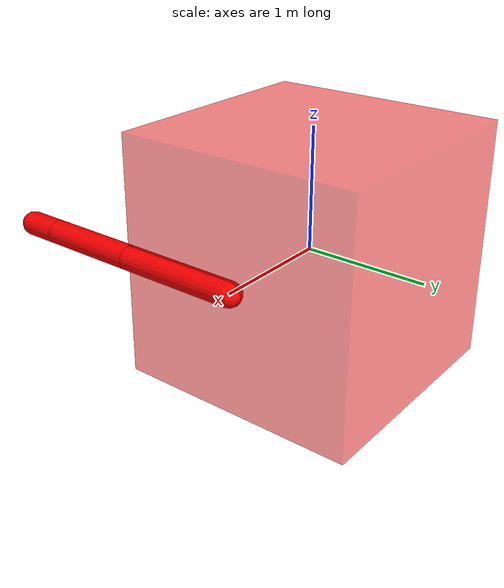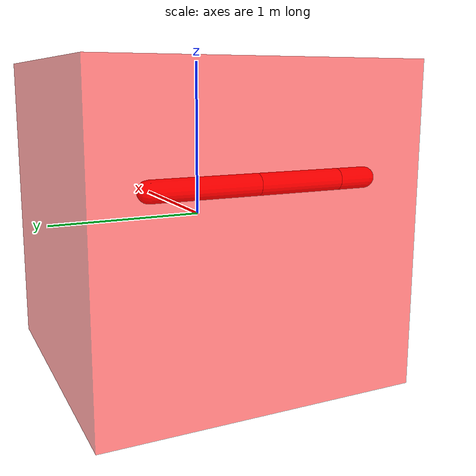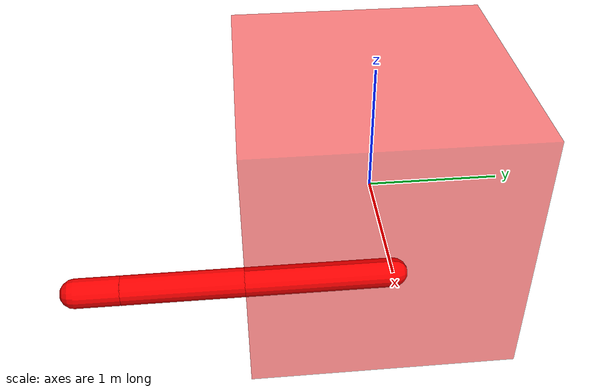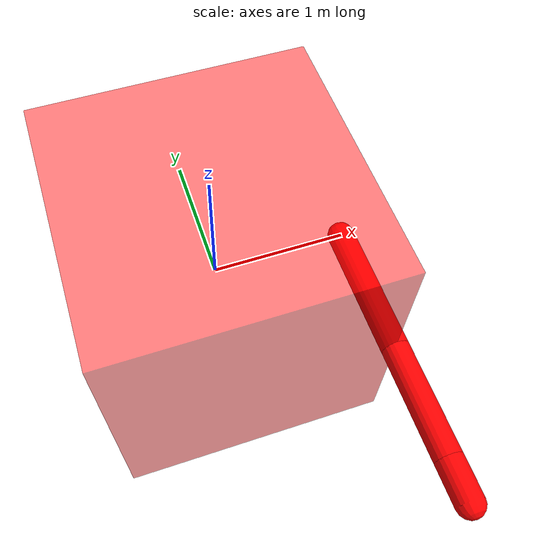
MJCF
<mujoco>
	<option gravity="0 0 0"/>

	<worldbody>
		<body name="hub">
			<freejoint/>
			<geom name="hub_box" type="box" size="1 1 1" rgba="1 0 0 0.5" contype="1" conaffinity="2" density="200"/>

			<body name="arm_1" pos="1 0 0" xyaxes="1 0 0 0 0 1">
				<geom name="arm_1" type="capsule" size="0.1" fromto="0 0 0 0 0 1" rgba="1 0 0 1" contype="1" conaffinity="2" />
				<joint name="arm_1_roll" axis="1 0 0"/>
				<joint name="arm_1_elev" axis="0 1 0" range="0 45"/>

				<body name="arm_2" pos="0 0 1">
					<geom name="arm_2" type="capsule" size="0.1" fromto="0 0 0 0 0 0.8159264" rgba="1 0 0 1" contype="1" conaffinity="2" />
					<joint name="arm_2_elev" axis="0 1 0" range="74.93 180"/>

					<body name="arm_3" pos="0 0 0.8159264">
						<geom name="arm_3" type="capsule" size="0.1" fromto="0 0 0 0 0 0.3" rgba="1 0 0 1" contype="1" conaffinity="2" />
						<joint name="arm_3_elev" axis="0 1 0" range="60.06941955 180"/>

						<site name="thruster_1" pos="0 0 0.3"/>
					</body>

					<body name="arm_4" pos="0 0 0.8159264">
						<geom name="arm_4" type="capsule" size="0.1" fromto="0 0 0 0 0 0.3" rgba="1 0 0 1" contype="1" conaffinity="2" />
						<joint name="arm_4_elev" axis="1 0 0" range="90 180"/>

						<site name="thruster_2" pos="0 0 0.3"/>
					</body>
				</body>

			</body>

		</body>

	</worldbody>

	<actuator>
		<motor name="thruster_1" site="thruster_1"  gear="0 0 -1 0 0 0"/>
		<motor name="thruster_2" site="thruster_2"  gear="0 0 -1 0 0 0"/>

	</actuator>

</mujoco>
